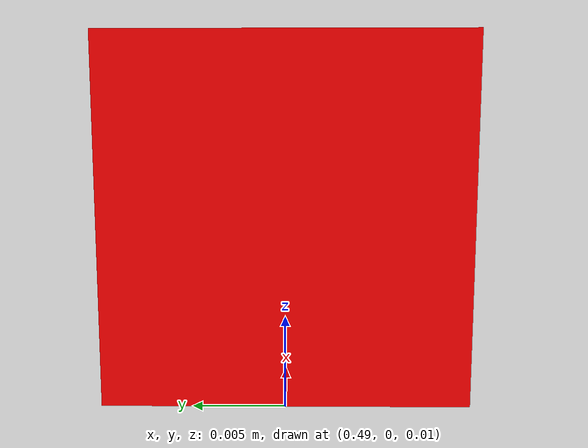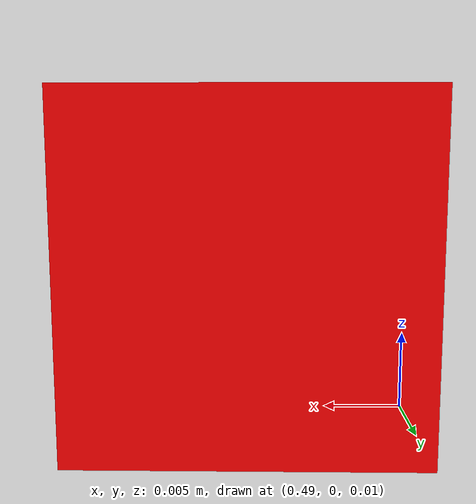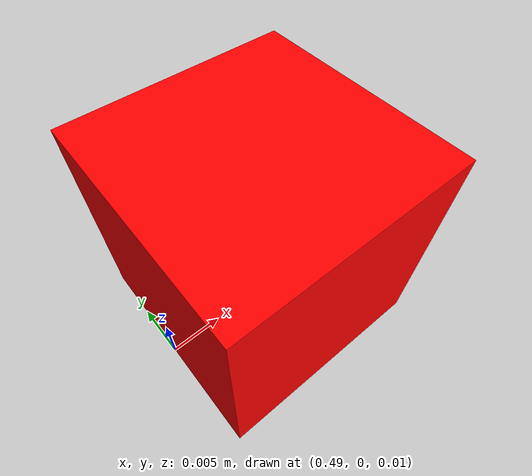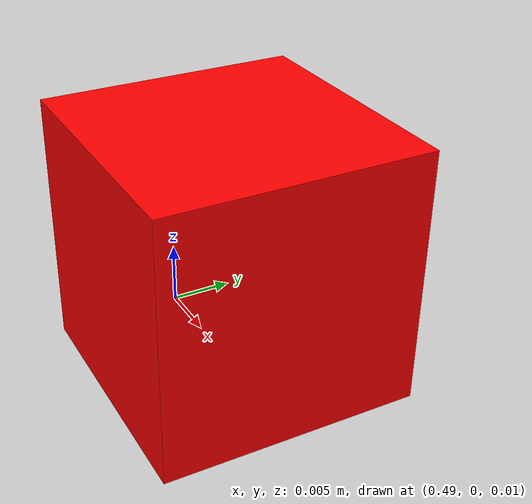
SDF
<!-- the cube that the youbot will pick & place -->

<?xml version="1.0"?>
<sdf version="1.9">
  <model name="cube">
    <pose>0.5 0.0 0.02 0 0 0</pose>
    <link name="link">
      <inertial>
        <mass>0.1</mass>
        <inertia>
          <ixx>1.67e-5</ixx><iyy>1.67e-5</iyy><izz>1.67e-5</izz>
        </inertia>
      </inertial>
      <collision name="collision">
        <geometry><box><size>0.02 0.02 0.02</size></box></geometry>
        <surface>
          <friction><ode><mu>1.0</mu><mu2>1.0</mu2></ode></friction>
        </surface>
      </collision>
      <visual name="visual">
        <geometry><box><size>0.02 0.02 0.02</size></box></geometry>
        <material>
          <ambient>1 0 0 1</ambient>
          <diffuse>1 0 0 1</diffuse>
        </material>
      </visual>
    </link>
  </model>
</sdf>
